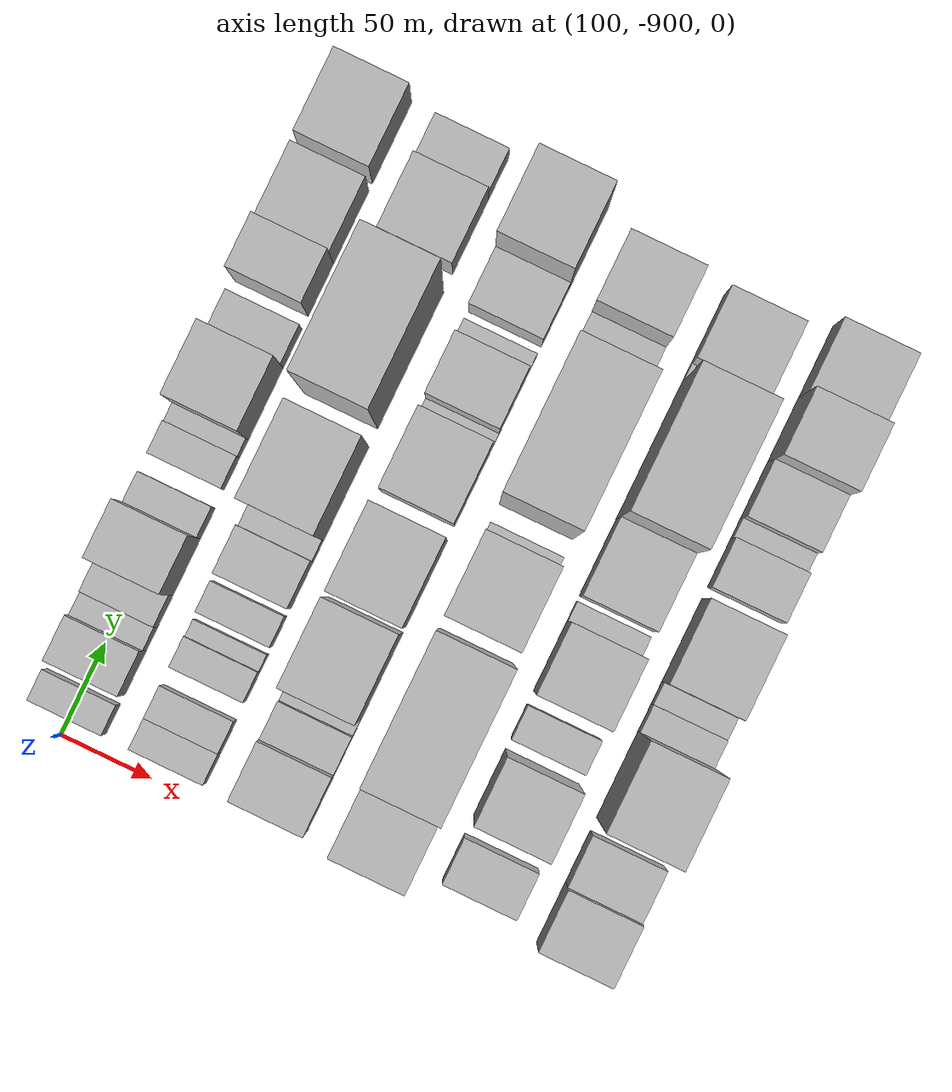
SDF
<sdf version="1.6">
 <world name="default">
  <model name="building_1">
   <static>1</static>
   <pose>100.0000 -881.7625 0 0.000000 0.000000 0.000000</pose>
   <link name="link">
    <pose>0 0 15.00 0 0 0</pose>
    <collision name="collision"><geometry><box><size>40.0000 16.4750 30.0000</size></box></geometry></collision>
    <visual name="visual">
     <cast_shadows>0</cast_shadows>
     <geometry><box><size>40.0000 16.4750 30.0000</size></box></geometry>
     <material>
      <script>
       <uri>model://HANNAS_wall/materials/scripts</uri>
       <uri>model://HANNAS_wall/materials/textures</uri>
       <name>vrc/HANNAS_wall</name>
      </script>
     </material>
    </visual>
   </link>
  </model>
  <model name="building_2">
   <static>1</static>
   <pose>100.0000 -856.3855 0 0.000000 0.000000 0.000000</pose>
   <link name="link">
    <pose>0 0 24.00 0 0 0</pose>
    <collision name="collision"><geometry><box><size>40.0000 24.2792 48.0000</size></box></geometry></collision>
    <visual name="visual">
     <cast_shadows>0</cast_shadows>
     <geometry><box><size>40.0000 24.2792 48.0000</size></box></geometry>
     <material>
      <script>
       <uri>model://HANNAS_wall/materials/scripts</uri>
       <uri>model://HANNAS_wall/materials/textures</uri>
       <name>vrc/HANNAS_wall</name>
      </script>
     </material>
    </visual>
   </link>
  </model>
  <model name="building_3">
   <static>1</static>
   <pose>100.0000 -837.9051 0 0.000000 0.000000 0.000000</pose>
   <link name="link">
    <pose>0 0 13.50 0 0 0</pose>
    <collision name="collision"><geometry><box><size>40.0000 12.6815 27.0000</size></box></geometry></collision>
    <visual name="visual">
     <cast_shadows>0</cast_shadows>
     <geometry><box><size>40.0000 12.6815 27.0000</size></box></geometry>
     <material>
      <script>
       <uri>model://HANNAS_wall/materials/scripts</uri>
       <uri>model://HANNAS_wall/materials/textures</uri>
       <name>vrc/HANNAS_wall</name>
      </script>
     </material>
    </visual>
   </link>
  </model>
  <model name="building_4">
   <static>1</static>
   <pose>100.0000 -822.8629 0 0.000000 0.000000 0.000000</pose>
   <link name="link">
    <pose>0 0 16.50 0 0 0</pose>
    <collision name="collision"><geometry><box><size>40.0000 17.4029 33.0000</size></box></geometry></collision>
    <visual name="visual">
     <cast_shadows>0</cast_shadows>
     <geometry><box><size>40.0000 17.4029 33.0000</size></box></geometry>
     <material>
      <script>
       <uri>model://HANNAS_wall/materials/scripts</uri>
       <uri>model://HANNAS_wall/materials/textures</uri>
       <name>vrc/HANNAS_wall</name>
      </script>
     </material>
    </visual>
   </link>
  </model>
  <model name="building_5">
   <static>1</static>
   <pose>100.0000 -798.7277 0 0.000000 0.000000 0.000000</pose>
   <link name="link">
    <pose>0 0 48.00 0 0 0</pose>
    <collision name="collision"><geometry><box><size>40.0000 30.8675 96.0000</size></box></geometry></collision>
    <visual name="visual">
     <cast_shadows>0</cast_shadows>
     <geometry><box><size>40.0000 30.8675 96.0000</size></box></geometry>
     <material>
      <script>
       <uri>model://HANNAS_wall/materials/scripts</uri>
       <uri>model://HANNAS_wall/materials/textures</uri>
       <name>vrc/HANNAS_wall</name>
      </script>
     </material>
    </visual>
   </link>
  </model>
  <model name="building_6">
   <static>1</static>
   <pose>100.0000 -774.9981 0 0.000000 0.000000 0.000000</pose>
   <link name="link">
    <pose>0 0 16.50 0 0 0</pose>
    <collision name="collision"><geometry><box><size>40.0000 16.5916 33.0000</size></box></geometry></collision>
    <visual name="visual">
     <cast_shadows>0</cast_shadows>
     <geometry><box><size>40.0000 16.5916 33.0000</size></box></geometry>
     <material>
      <script>
       <uri>model://HANNAS_wall/materials/scripts</uri>
       <uri>model://HANNAS_wall/materials/textures</uri>
       <name>vrc/HANNAS_wall</name>
      </script>
     </material>
    </visual>
   </link>
  </model>
  <model name="building_7">
   <static>1</static>
   <pose>100.0000 -747.9396 0 0.000000 0.000000 0.000000</pose>
   <link name="link">
    <pose>0 0 15.00 0 0 0</pose>
    <collision name="collision"><geometry><box><size>40.0000 17.5255 30.0000</size></box></geometry></collision>
    <visual name="visual">
     <cast_shadows>0</cast_shadows>
     <geometry><box><size>40.0000 17.5255 30.0000</size></box></geometry>
     <material>
      <script>
       <uri>model://HANNAS_wall/materials/scripts</uri>
       <uri>model://HANNAS_wall/materials/textures</uri>
       <name>vrc/HANNAS_wall</name>
      </script>
     </material>
    </visual>
   </link>
  </model>
  <model name="building_8">
   <static>1</static>
   <pose>100.0000 -734.2283 0 0.000000 0.000000 0.000000</pose>
   <link name="link">
    <pose>0 0 12.00 0 0 0</pose>
    <collision name="collision"><geometry><box><size>40.0000 9.8973 24.0000</size></box></geometry></collision>
    <visual name="visual">
     <cast_shadows>0</cast_shadows>
     <geometry><box><size>40.0000 9.8973 24.0000</size></box></geometry>
     <material>
      <script>
       <uri>model://HANNAS_wall/materials/scripts</uri>
       <uri>model://HANNAS_wall/materials/textures</uri>
       <name>vrc/HANNAS_wall</name>
      </script>
     </material>
    </visual>
   </link>
  </model>
  <model name="building_9">
   <static>1</static>
   <pose>100.0000 -709.6391 0 0.000000 0.000000 0.000000</pose>
   <link name="link">
    <pose>0 0 52.50 0 0 0</pose>
    <collision name="collision"><geometry><box><size>40.0000 39.2811 105.0000</size></box></geometry></collision>
    <visual name="visual">
     <cast_shadows>0</cast_shadows>
     <geometry><box><size>40.0000 39.2811 105.0000</size></box></geometry>
     <material>
      <script>
       <uri>model://HANNAS_wall/materials/scripts</uri>
       <uri>model://HANNAS_wall/materials/textures</uri>
       <name>vrc/HANNAS_wall</name>
      </script>
     </material>
    </visual>
   </link>
  </model>
  <model name="building_10">
   <static>1</static>
   <pose>100.0000 -679.3058 0 0.000000 0.000000 0.000000</pose>
   <link name="link">
    <pose>0 0 18.00 0 0 0</pose>
    <collision name="collision"><geometry><box><size>40.0000 21.3855 36.0000</size></box></geometry></collision>
    <visual name="visual">
     <cast_shadows>0</cast_shadows>
     <geometry><box><size>40.0000 21.3855 36.0000</size></box></geometry>
     <material>
      <script>
       <uri>model://HANNAS_wall/materials/scripts</uri>
       <uri>model://HANNAS_wall/materials/textures</uri>
       <name>vrc/HANNAS_wall</name>
      </script>
     </material>
    </visual>
   </link>
  </model>
  <model name="building_11">
   <static>1</static>
   <pose>100.0000 -647.3270 0 0.000000 0.000000 0.000000</pose>
   <link name="link">
    <pose>0 0 46.50 0 0 0</pose>
    <collision name="collision"><geometry><box><size>40.0000 28.5720 93.0000</size></box></geometry></collision>
    <visual name="visual">
     <cast_shadows>0</cast_shadows>
     <geometry><box><size>40.0000 28.5720 93.0000</size></box></geometry>
     <material>
      <script>
       <uri>model://HANNAS_wall/materials/scripts</uri>
       <uri>model://HANNAS_wall/materials/textures</uri>
       <name>vrc/HANNAS_wall</name>
      </script>
     </material>
    </visual>
   </link>
  </model>
  <model name="building_12">
   <static>1</static>
   <pose>100.0000 -612.9655 0 0.000000 0.000000 0.000000</pose>
   <link name="link">
    <pose>0 0 36.00 0 0 0</pose>
    <collision name="collision"><geometry><box><size>40.0000 40.1510 72.0000</size></box></geometry></collision>
    <visual name="visual">
     <cast_shadows>0</cast_shadows>
     <geometry><box><size>40.0000 40.1510 72.0000</size></box></geometry>
     <material>
      <script>
       <uri>model://HANNAS_wall/materials/scripts</uri>
       <uri>model://HANNAS_wall/materials/textures</uri>
       <name>vrc/HANNAS_wall</name>
      </script>
     </material>
    </visual>
   </link>
  </model>
  <model name="building_13">
   <static>1</static>
   <pose>100.0000 -566.7129 0 0.000000 0.000000 0.000000</pose>
   <link name="link">
    <pose>0 0 40.50 0 0 0</pose>
    <collision name="collision"><geometry><box><size>40.0000 44.3541 81.0000</size></box></geometry></collision>
    <visual name="visual">
     <cast_shadows>0</cast_shadows>
     <geometry><box><size>40.0000 44.3541 81.0000</size></box></geometry>
     <material>
      <script>
       <uri>model://HANNAS_wall/materials/scripts</uri>
       <uri>model://HANNAS_wall/materials/textures</uri>
       <name>vrc/HANNAS_wall</name>
      </script>
     </material>
    </visual>
   </link>
  </model>
  <model name="building_55">
   <static>1</static>
   <pose>155.0000 -881.6311 0 0.000000 0.000000 0.000000</pose>
   <link name="link">
    <pose>0 0 16.50 0 0 0</pose>
    <collision name="collision"><geometry><box><size>40.0000 16.7379 33.0000</size></box></geometry></collision>
    <visual name="visual">
     <cast_shadows>0</cast_shadows>
     <geometry><box><size>40.0000 16.7379 33.0000</size></box></geometry>
     <material>
      <script>
       <uri>model://HANNAS_wall/materials/scripts</uri>
       <uri>model://HANNAS_wall/materials/textures</uri>
       <name>vrc/HANNAS_wall</name>
      </script>
     </material>
    </visual>
   </link>
  </model>
  <model name="building_56">
   <static>1</static>
   <pose>155.0000 -864.4786 0 0.000000 0.000000 0.000000</pose>
   <link name="link">
    <pose>0 0 16.50 0 0 0</pose>
    <collision name="collision"><geometry><box><size>40.0000 17.5671 33.0000</size></box></geometry></collision>
    <visual name="visual">
     <cast_shadows>0</cast_shadows>
     <geometry><box><size>40.0000 17.5671 33.0000</size></box></geometry>
     <material>
      <script>
       <uri>model://HANNAS_wall/materials/scripts</uri>
       <uri>model://HANNAS_wall/materials/textures</uri>
       <name>vrc/HANNAS_wall</name>
      </script>
     </material>
    </visual>
   </link>
  </model>
  <model name="building_57">
   <static>1</static>
   <pose>155.0000 -837.4227 0 0.000000 0.000000 0.000000</pose>
   <link name="link">
    <pose>0 0 15.00 0 0 0</pose>
    <collision name="collision"><geometry><box><size>40.0000 16.5447 30.0000</size></box></geometry></collision>
    <visual name="visual">
     <cast_shadows>0</cast_shadows>
     <geometry><box><size>40.0000 16.5447 30.0000</size></box></geometry>
     <material>
      <script>
       <uri>model://HANNAS_wall/materials/scripts</uri>
       <uri>model://HANNAS_wall/materials/textures</uri>
       <name>vrc/HANNAS_wall</name>
      </script>
     </material>
    </visual>
   </link>
  </model>
  <model name="building_58">
   <static>1</static>
   <pose>155.0000 -824.5415 0 0.000000 0.000000 0.000000</pose>
   <link name="link">
    <pose>0 0 10.50 0 0 0</pose>
    <collision name="collision"><geometry><box><size>40.0000 9.2176 21.0000</size></box></geometry></collision>
    <visual name="visual">
     <cast_shadows>0</cast_shadows>
     <geometry><box><size>40.0000 9.2176 21.0000</size></box></geometry>
     <material>
      <script>
       <uri>model://HANNAS_wall/materials/scripts</uri>
       <uri>model://HANNAS_wall/materials/textures</uri>
       <name>vrc/HANNAS_wall</name>
      </script>
     </material>
    </visual>
   </link>
  </model>
  <model name="building_59">
   <static>1</static>
   <pose>155.0000 -807.5551 0 0.000000 0.000000 0.000000</pose>
   <link name="link">
    <pose>0 0 16.50 0 0 0</pose>
    <collision name="collision"><geometry><box><size>40.0000 16.7553 33.0000</size></box></geometry></collision>
    <visual name="visual">
     <cast_shadows>0</cast_shadows>
     <geometry><box><size>40.0000 16.7553 33.0000</size></box></geometry>
     <material>
      <script>
       <uri>model://HANNAS_wall/materials/scripts</uri>
       <uri>model://HANNAS_wall/materials/textures</uri>
       <name>vrc/HANNAS_wall</name>
      </script>
     </material>
    </visual>
   </link>
  </model>
  <model name="building_60">
   <static>1</static>
   <pose>155.0000 -782.2550 0 0.000000 0.000000 0.000000</pose>
   <link name="link">
    <pose>0 0 22.50 0 0 0</pose>
    <collision name="collision"><geometry><box><size>40.0000 25.8450 45.0000</size></box></geometry></collision>
    <visual name="visual">
     <cast_shadows>0</cast_shadows>
     <geometry><box><size>40.0000 25.8450 45.0000</size></box></geometry>
     <material>
      <script>
       <uri>model://HANNAS_wall/materials/scripts</uri>
       <uri>model://HANNAS_wall/materials/textures</uri>
       <name>vrc/HANNAS_wall</name>
      </script>
     </material>
    </visual>
   </link>
  </model>
  <model name="building_61">
   <static>1</static>
   <pose>155.0000 -763.6076 0 0.000000 0.000000 0.000000</pose>
   <link name="link">
    <pose>0 0 12.00 0 0 0</pose>
    <collision name="collision"><geometry><box><size>40.0000 11.4497 24.0000</size></box></geometry></collision>
    <visual name="visual">
     <cast_shadows>0</cast_shadows>
     <geometry><box><size>40.0000 11.4497 24.0000</size></box></geometry>
     <material>
      <script>
       <uri>model://HANNAS_wall/materials/scripts</uri>
       <uri>model://HANNAS_wall/materials/textures</uri>
       <name>vrc/HANNAS_wall</name>
      </script>
     </material>
    </visual>
   </link>
  </model>
  <model name="building_62">
   <static>1</static>
   <pose>155.0000 -732.2870 0 0.000000 0.000000 0.000000</pose>
   <link name="link">
    <pose>0 0 70.50 0 0 0</pose>
    <collision name="collision"><geometry><box><size>40.0000 51.1915 141.0000</size></box></geometry></collision>
    <visual name="visual">
     <cast_shadows>0</cast_shadows>
     <geometry><box><size>40.0000 51.1915 141.0000</size></box></geometry>
     <material>
      <script>
       <uri>model://HANNAS_wall/materials/scripts</uri>
       <uri>model://HANNAS_wall/materials/textures</uri>
       <name>vrc/HANNAS_wall</name>
      </script>
     </material>
    </visual>
   </link>
  </model>
  <model name="building_63">
   <static>1</static>
   <pose>155.0000 -659.3699 0 0.000000 0.000000 0.000000</pose>
   <link name="link">
    <pose>0 0 102.00 0 0 0</pose>
    <collision name="collision"><geometry><box><size>40.0000 74.6427 204.0000</size></box></geometry></collision>
    <visual name="visual">
     <cast_shadows>0</cast_shadows>
     <geometry><box><size>40.0000 74.6427 204.0000</size></box></geometry>
     <material>
      <script>
       <uri>model://HANNAS_wall/materials/scripts</uri>
       <uri>model://HANNAS_wall/materials/textures</uri>
       <name>vrc/HANNAS_wall</name>
      </script>
     </material>
    </visual>
   </link>
  </model>
  <model name="building_64">
   <static>1</static>
   <pose>155.0000 -591.8544 0 0.000000 0.000000 0.000000</pose>
   <link name="link">
    <pose>0 0 34.50 0 0 0</pose>
    <collision name="collision"><geometry><box><size>40.0000 40.3883 69.0000</size></box></geometry></collision>
    <visual name="visual">
     <cast_shadows>0</cast_shadows>
     <geometry><box><size>40.0000 40.3883 69.0000</size></box></geometry>
     <material>
      <script>
       <uri>model://HANNAS_wall/materials/scripts</uri>
       <uri>model://HANNAS_wall/materials/textures</uri>
       <name>vrc/HANNAS_wall</name>
      </script>
     </material>
    </visual>
   </link>
  </model>
  <model name="building_65">
   <static>1</static>
   <pose>155.0000 -559.8969 0 0.000000 0.000000 0.000000</pose>
   <link name="link">
    <pose>0 0 22.50 0 0 0</pose>
    <collision name="collision"><geometry><box><size>40.0000 23.5267 45.0000</size></box></geometry></collision>
    <visual name="visual">
     <cast_shadows>0</cast_shadows>
     <geometry><box><size>40.0000 23.5267 45.0000</size></box></geometry>
     <material>
      <script>
       <uri>model://HANNAS_wall/materials/scripts</uri>
       <uri>model://HANNAS_wall/materials/textures</uri>
       <name>vrc/HANNAS_wall</name>
      </script>
     </material>
    </visual>
   </link>
  </model>
  <model name="building_104">
   <static>1</static>
   <pose>210.0000 -874.0000 0 0.000000 0.000000 0.000000</pose>
   <link name="link">
    <pose>0 0 30.00 0 0 0</pose>
    <collision name="collision"><geometry><box><size>40.0000 32.0001 60.0000</size></box></geometry></collision>
    <visual name="visual">
     <cast_shadows>0</cast_shadows>
     <geometry><box><size>40.0000 32.0001 60.0000</size></box></geometry>
     <material>
      <script>
       <uri>model://HANNAS_wall/materials/scripts</uri>
       <uri>model://HANNAS_wall/materials/textures</uri>
       <name>vrc/HANNAS_wall</name>
      </script>
     </material>
    </visual>
   </link>
  </model>
  <model name="building_105">
   <static>1</static>
   <pose>210.0000 -847.6858 0 0.000000 0.000000 0.000000</pose>
   <link name="link">
    <pose>0 0 18.00 0 0 0</pose>
    <collision name="collision"><geometry><box><size>40.0000 20.6282 36.0000</size></box></geometry></collision>
    <visual name="visual">
     <cast_shadows>0</cast_shadows>
     <geometry><box><size>40.0000 20.6282 36.0000</size></box></geometry>
     <material>
      <script>
       <uri>model://HANNAS_wall/materials/scripts</uri>
       <uri>model://HANNAS_wall/materials/textures</uri>
       <name>vrc/HANNAS_wall</name>
      </script>
     </material>
    </visual>
   </link>
  </model>
  <model name="building_106">
   <static>1</static>
   <pose>210.0000 -832.7946 0 0.000000 0.000000 0.000000</pose>
   <link name="link">
    <pose>0 0 10.50 0 0 0</pose>
    <collision name="collision"><geometry><box><size>40.0000 9.1542 21.0000</size></box></geometry></collision>
    <visual name="visual">
     <cast_shadows>0</cast_shadows>
     <geometry><box><size>40.0000 9.1542 21.0000</size></box></geometry>
     <material>
      <script>
       <uri>model://HANNAS_wall/materials/scripts</uri>
       <uri>model://HANNAS_wall/materials/textures</uri>
       <name>vrc/HANNAS_wall</name>
      </script>
     </material>
    </visual>
   </link>
  </model>
  <model name="building_107">
   <static>1</static>
   <pose>210.0000 -804.8758 0 0.000000 0.000000 0.000000</pose>
   <link name="link">
    <pose>0 0 67.50 0 0 0</pose>
    <collision name="collision"><geometry><box><size>40.0000 46.6835 135.0000</size></box></geometry></collision>
    <visual name="visual">
     <cast_shadows>0</cast_shadows>
     <geometry><box><size>40.0000 46.6835 135.0000</size></box></geometry>
     <material>
      <script>
       <uri>model://HANNAS_wall/materials/scripts</uri>
       <uri>model://HANNAS_wall/materials/textures</uri>
       <name>vrc/HANNAS_wall</name>
      </script>
     </material>
    </visual>
   </link>
  </model>
  <model name="building_108">
   <static>1</static>
   <pose>210.0000 -755.1215 0 0.000000 0.000000 0.000000</pose>
   <link name="link">
    <pose>0 0 61.50 0 0 0</pose>
    <collision name="collision"><geometry><box><size>40.0000 46.8251 123.0000</size></box></geometry></collision>
    <visual name="visual">
     <cast_shadows>0</cast_shadows>
     <geometry><box><size>40.0000 46.8251 123.0000</size></box></geometry>
     <material>
      <script>
       <uri>model://HANNAS_wall/materials/scripts</uri>
       <uri>model://HANNAS_wall/materials/textures</uri>
       <name>vrc/HANNAS_wall</name>
      </script>
     </material>
    </visual>
   </link>
  </model>
  <model name="building_109">
   <static>1</static>
   <pose>210.0000 -701.8654 0 0.000000 0.000000 0.000000</pose>
   <link name="link">
    <pose>0 0 37.50 0 0 0</pose>
    <collision name="collision"><geometry><box><size>40.0000 43.6871 75.0000</size></box></geometry></collision>
    <visual name="visual">
     <cast_shadows>0</cast_shadows>
     <geometry><box><size>40.0000 43.6871 75.0000</size></box></geometry>
     <material>
      <script>
       <uri>model://HANNAS_wall/materials/scripts</uri>
       <uri>model://HANNAS_wall/materials/textures</uri>
       <name>vrc/HANNAS_wall</name>
      </script>
     </material>
    </visual>
   </link>
  </model>
  <model name="building_110">
   <static>1</static>
   <pose>210.0000 -676.6500 0 0.000000 0.000000 0.000000</pose>
   <link name="link">
    <pose>0 0 7.50 0 0 0</pose>
    <collision name="collision"><geometry><box><size>40.0000 6.7435 15.0000</size></box></geometry></collision>
    <visual name="visual">
     <cast_shadows>0</cast_shadows>
     <geometry><box><size>40.0000 6.7435 15.0000</size></box></geometry>
     <material>
      <script>
       <uri>model://HANNAS_wall/materials/scripts</uri>
       <uri>model://HANNAS_wall/materials/textures</uri>
       <name>vrc/HANNAS_wall</name>
      </script>
     </material>
    </visual>
   </link>
  </model>
  <model name="building_111">
   <static>1</static>
   <pose>210.0000 -656.5420 0 0.000000 0.000000 0.000000</pose>
   <link name="link">
    <pose>0 0 33.00 0 0 0</pose>
    <collision name="collision"><geometry><box><size>40.0000 33.4725 66.0000</size></box></geometry></collision>
    <visual name="visual">
     <cast_shadows>0</cast_shadows>
     <geometry><box><size>40.0000 33.4725 66.0000</size></box></geometry>
     <material>
      <script>
       <uri>model://HANNAS_wall/materials/scripts</uri>
       <uri>model://HANNAS_wall/materials/textures</uri>
       <name>vrc/HANNAS_wall</name>
      </script>
     </material>
    </visual>
   </link>
  </model>
  <model name="building_112">
   <static>1</static>
   <pose>210.0000 -635.0060 0 0.000000 0.000000 0.000000</pose>
   <link name="link">
    <pose>0 0 10.50 0 0 0</pose>
    <collision name="collision"><geometry><box><size>40.0000 9.5997 21.0000</size></box></geometry></collision>
    <visual name="visual">
     <cast_shadows>0</cast_shadows>
     <geometry><box><size>40.0000 9.5997 21.0000</size></box></geometry>
     <material>
      <script>
       <uri>model://HANNAS_wall/materials/scripts</uri>
       <uri>model://HANNAS_wall/materials/textures</uri>
       <name>vrc/HANNAS_wall</name>
      </script>
     </material>
    </visual>
   </link>
  </model>
  <model name="building_113">
   <static>1</static>
   <pose>210.0000 -610.1034 0 0.000000 0.000000 0.000000</pose>
   <link name="link">
    <pose>0 0 30.00 0 0 0</pose>
    <collision name="collision"><geometry><box><size>40.0000 30.2054 60.0000</size></box></geometry></collision>
    <visual name="visual">
     <cast_shadows>0</cast_shadows>
     <geometry><box><size>40.0000 30.2054 60.0000</size></box></geometry>
     <material>
      <script>
       <uri>model://HANNAS_wall/materials/scripts</uri>
       <uri>model://HANNAS_wall/materials/textures</uri>
       <name>vrc/HANNAS_wall</name>
      </script>
     </material>
    </visual>
   </link>
  </model>
  <model name="building_114">
   <static>1</static>
   <pose>210.0000 -572.5252 0 0.000000 0.000000 0.000000</pose>
   <link name="link">
    <pose>0 0 70.50 0 0 0</pose>
    <collision name="collision"><geometry><box><size>40.0000 44.9510 141.0000</size></box></geometry></collision>
    <visual name="visual">
     <cast_shadows>0</cast_shadows>
     <geometry><box><size>40.0000 44.9510 141.0000</size></box></geometry>
     <material>
      <script>
       <uri>model://HANNAS_wall/materials/scripts</uri>
       <uri>model://HANNAS_wall/materials/textures</uri>
       <name>vrc/HANNAS_wall</name>
      </script>
     </material>
    </visual>
   </link>
  </model>
  <model name="building_157">
   <static>1</static>
   <pose>265.0000 -869.7420 0 0.000000 0.000000 0.000000</pose>
   <link name="link">
    <pose>0 0 57.00 0 0 0</pose>
    <collision name="collision"><geometry><box><size>40.0000 40.5159 114.0000</size></box></geometry></collision>
    <visual name="visual">
     <cast_shadows>0</cast_shadows>
     <geometry><box><size>40.0000 40.5159 114.0000</size></box></geometry>
     <material>
      <script>
       <uri>model://HANNAS_wall/materials/scripts</uri>
       <uri>model://HANNAS_wall/materials/textures</uri>
       <name>vrc/HANNAS_wall</name>
      </script>
     </material>
    </visual>
   </link>
  </model>
  <model name="building_158">
   <static>1</static>
   <pose>265.0000 -810.5666 0 0.000000 0.000000 0.000000</pose>
   <link name="link">
    <pose>0 0 105.00 0 0 0</pose>
    <collision name="collision"><geometry><box><size>40.0000 77.8350 210.0000</size></box></geometry></collision>
    <visual name="visual">
     <cast_shadows>0</cast_shadows>
     <geometry><box><size>40.0000 77.8350 210.0000</size></box></geometry>
     <material>
      <script>
       <uri>model://HANNAS_wall/materials/scripts</uri>
       <uri>model://HANNAS_wall/materials/textures</uri>
       <name>vrc/HANNAS_wall</name>
      </script>
     </material>
    </visual>
   </link>
  </model>
  <model name="building_159">
   <static>1</static>
   <pose>265.0000 -742.4040 0 0.000000 0.000000 0.000000</pose>
   <link name="link">
    <pose>0 0 61.50 0 0 0</pose>
    <collision name="collision"><geometry><box><size>40.0000 44.4901 123.0000</size></box></geometry></collision>
    <visual name="visual">
     <cast_shadows>0</cast_shadows>
     <geometry><box><size>40.0000 44.4901 123.0000</size></box></geometry>
     <material>
      <script>
       <uri>model://HANNAS_wall/materials/scripts</uri>
       <uri>model://HANNAS_wall/materials/textures</uri>
       <name>vrc/HANNAS_wall</name>
      </script>
     </material>
    </visual>
   </link>
  </model>
  <model name="building_160">
   <static>1</static>
   <pose>265.0000 -717.0998 0 0.000000 0.000000 0.000000</pose>
   <link name="link">
    <pose>0 0 7.50 0 0 0</pose>
    <collision name="collision"><geometry><box><size>40.0000 6.1184 15.0000</size></box></geometry></collision>
    <visual name="visual">
     <cast_shadows>0</cast_shadows>
     <geometry><box><size>40.0000 6.1184 15.0000</size></box></geometry>
     <material>
      <script>
       <uri>model://HANNAS_wall/materials/scripts</uri>
       <uri>model://HANNAS_wall/materials/textures</uri>
       <name>vrc/HANNAS_wall</name>
      </script>
     </material>
    </visual>
   </link>
  </model>
  <model name="building_161">
   <static>1</static>
   <pose>265.0000 -664.5397 0 0.000000 0.000000 0.000000</pose>
   <link name="link">
    <pose>0 0 111.00 0 0 0</pose>
    <collision name="collision"><geometry><box><size>40.0000 79.0017 222.0000</size></box></geometry></collision>
    <visual name="visual">
     <cast_shadows>0</cast_shadows>
     <geometry><box><size>40.0000 79.0017 222.0000</size></box></geometry>
     <material>
      <script>
       <uri>model://HANNAS_wall/materials/scripts</uri>
       <uri>model://HANNAS_wall/materials/textures</uri>
       <name>vrc/HANNAS_wall</name>
      </script>
     </material>
    </visual>
   </link>
  </model>
  <model name="building_162">
   <static>1</static>
   <pose>265.0000 -608.4240 0 0.000000 0.000000 0.000000</pose>
   <link name="link">
    <pose>0 0 15.00 0 0 0</pose>
    <collision name="collision"><geometry><box><size>40.0000 15.2297 30.0000</size></box></geometry></collision>
    <visual name="visual">
     <cast_shadows>0</cast_shadows>
     <geometry><box><size>40.0000 15.2297 30.0000</size></box></geometry>
     <material>
      <script>
       <uri>model://HANNAS_wall/materials/scripts</uri>
       <uri>model://HANNAS_wall/materials/textures</uri>
       <name>vrc/HANNAS_wall</name>
      </script>
     </material>
    </visual>
   </link>
  </model>
  <model name="building_163">
   <static>1</static>
   <pose>265.0000 -582.1180 0 0.000000 0.000000 0.000000</pose>
   <link name="link">
    <pose>0 0 52.50 0 0 0</pose>
    <collision name="collision"><geometry><box><size>40.0000 37.3822 105.0000</size></box></geometry></collision>
    <visual name="visual">
     <cast_shadows>0</cast_shadows>
     <geometry><box><size>40.0000 37.3822 105.0000</size></box></geometry>
     <material>
      <script>
       <uri>model://HANNAS_wall/materials/scripts</uri>
       <uri>model://HANNAS_wall/materials/textures</uri>
       <name>vrc/HANNAS_wall</name>
      </script>
     </material>
    </visual>
   </link>
  </model>
  <model name="building_205">
   <static>1</static>
   <pose>320.0000 -869.4951 0 0.000000 0.000000 0.000000</pose>
   <link name="link">
    <pose>0 0 22.50 0 0 0</pose>
    <collision name="collision"><geometry><box><size>40.0000 25.0098 45.0000</size></box></geometry></collision>
    <visual name="visual">
     <cast_shadows>0</cast_shadows>
     <geometry><box><size>40.0000 25.0098 45.0000</size></box></geometry>
     <material>
      <script>
       <uri>model://HANNAS_wall/materials/scripts</uri>
       <uri>model://HANNAS_wall/materials/textures</uri>
       <name>vrc/HANNAS_wall</name>
      </script>
     </material>
    </visual>
   </link>
  </model>
  <model name="building_206">
   <static>1</static>
   <pose>320.0000 -828.9703 0 0.000000 0.000000 0.000000</pose>
   <link name="link">
    <pose>0 0 58.50 0 0 0</pose>
    <collision name="collision"><geometry><box><size>40.0000 36.0398 117.0000</size></box></geometry></collision>
    <visual name="visual">
     <cast_shadows>0</cast_shadows>
     <geometry><box><size>40.0000 36.0398 117.0000</size></box></geometry>
     <material>
      <script>
       <uri>model://HANNAS_wall/materials/scripts</uri>
       <uri>model://HANNAS_wall/materials/textures</uri>
       <name>vrc/HANNAS_wall</name>
      </script>
     </material>
    </visual>
   </link>
  </model>
  <model name="building_207">
   <static>1</static>
   <pose>320.0000 -795.6777 0 0.000000 0.000000 0.000000</pose>
   <link name="link">
    <pose>0 0 18.00 0 0 0</pose>
    <collision name="collision"><geometry><box><size>40.0000 18.5454 36.0000</size></box></geometry></collision>
    <visual name="visual">
     <cast_shadows>0</cast_shadows>
     <geometry><box><size>40.0000 18.5454 36.0000</size></box></geometry>
     <material>
      <script>
       <uri>model://HANNAS_wall/materials/scripts</uri>
       <uri>model://HANNAS_wall/materials/textures</uri>
       <name>vrc/HANNAS_wall</name>
      </script>
     </material>
    </visual>
   </link>
  </model>
  <model name="building_208">
   <static>1</static>
   <pose>320.0000 -760.4525 0 0.000000 0.000000 0.000000</pose>
   <link name="link">
    <pose>0 0 51.00 0 0 0</pose>
    <collision name="collision"><geometry><box><size>40.0000 37.9051 102.0000</size></box></geometry></collision>
    <visual name="visual">
     <cast_shadows>0</cast_shadows>
     <geometry><box><size>40.0000 37.9051 102.0000</size></box></geometry>
     <material>
      <script>
       <uri>model://HANNAS_wall/materials/scripts</uri>
       <uri>model://HANNAS_wall/materials/textures</uri>
       <name>vrc/HANNAS_wall</name>
      </script>
     </material>
    </visual>
   </link>
  </model>
  <model name="building_209">
   <static>1</static>
   <pose>320.0000 -736.0866 0 0.000000 0.000000 0.000000</pose>
   <link name="link">
    <pose>0 0 12.00 0 0 0</pose>
    <collision name="collision"><geometry><box><size>40.0000 10.8265 24.0000</size></box></geometry></collision>
    <visual name="visual">
     <cast_shadows>0</cast_shadows>
     <geometry><box><size>40.0000 10.8265 24.0000</size></box></geometry>
     <material>
      <script>
       <uri>model://HANNAS_wall/materials/scripts</uri>
       <uri>model://HANNAS_wall/materials/textures</uri>
       <name>vrc/HANNAS_wall</name>
      </script>
     </material>
    </visual>
   </link>
  </model>
  <model name="building_210">
   <static>1</static>
   <pose>320.0000 -706.8451 0 0.000000 0.000000 0.000000</pose>
   <link name="link">
    <pose>0 0 37.50 0 0 0</pose>
    <collision name="collision"><geometry><box><size>40.0000 41.6565 75.0000</size></box></geometry></collision>
    <visual name="visual">
     <cast_shadows>0</cast_shadows>
     <geometry><box><size>40.0000 41.6565 75.0000</size></box></geometry>
     <material>
      <script>
       <uri>model://HANNAS_wall/materials/scripts</uri>
       <uri>model://HANNAS_wall/materials/textures</uri>
       <name>vrc/HANNAS_wall</name>
      </script>
     </material>
    </visual>
   </link>
  </model>
  <model name="building_211">
   <static>1</static>
   <pose>320.0000 -648.5300 0 0.000000 0.000000 0.000000</pose>
   <link name="link">
    <pose>0 0 94.50 0 0 0</pose>
    <collision name="collision"><geometry><box><size>40.0000 74.9738 189.0000</size></box></geometry></collision>
    <visual name="visual">
     <cast_shadows>0</cast_shadows>
     <geometry><box><size>40.0000 74.9738 189.0000</size></box></geometry>
     <material>
      <script>
       <uri>model://HANNAS_wall/materials/scripts</uri>
       <uri>model://HANNAS_wall/materials/textures</uri>
       <name>vrc/HANNAS_wall</name>
      </script>
     </material>
    </visual>
   </link>
  </model>
  <model name="building_212">
   <static>1</static>
   <pose>320.0000 -606.3696 0 0.000000 0.000000 0.000000</pose>
   <link name="link">
    <pose>0 0 10.50 0 0 0</pose>
    <collision name="collision"><geometry><box><size>40.0000 9.3471 21.0000</size></box></geometry></collision>
    <visual name="visual">
     <cast_shadows>0</cast_shadows>
     <geometry><box><size>40.0000 9.3471 21.0000</size></box></geometry>
     <material>
      <script>
       <uri>model://HANNAS_wall/materials/scripts</uri>
       <uri>model://HANNAS_wall/materials/textures</uri>
       <name>vrc/HANNAS_wall</name>
      </script>
     </material>
    </visual>
   </link>
  </model>
  <model name="building_213">
   <static>1</static>
   <pose>320.0000 -582.3922 0 0.000000 0.000000 0.000000</pose>
   <link name="link">
    <pose>0 0 34.50 0 0 0</pose>
    <collision name="collision"><geometry><box><size>40.0000 38.6075 69.0000</size></box></geometry></collision>
    <visual name="visual">
     <cast_shadows>0</cast_shadows>
     <geometry><box><size>40.0000 38.6075 69.0000</size></box></geometry>
     <material>
      <script>
       <uri>model://HANNAS_wall/materials/scripts</uri>
       <uri>model://HANNAS_wall/materials/textures</uri>
       <name>vrc/HANNAS_wall</name>
      </script>
     </material>
    </visual>
   </link>
  </model>
  <model name="building_258">
   <static>1</static>
   <pose>375.0000 -873.4776 0 0.000000 0.000000 0.000000</pose>
   <link name="link">
    <pose>0 0 31.50 0 0 0</pose>
    <collision name="collision"><geometry><box><size>40.0000 33.0448 63.0000</size></box></geometry></collision>
    <visual name="visual">
     <cast_shadows>0</cast_shadows>
     <geometry><box><size>40.0000 33.0448 63.0000</size></box></geometry>
     <material>
      <script>
       <uri>model://HANNAS_wall/materials/scripts</uri>
       <uri>model://HANNAS_wall/materials/textures</uri>
       <name>vrc/HANNAS_wall</name>
      </script>
     </material>
    </visual>
   </link>
  </model>
  <model name="building_259">
   <static>1</static>
   <pose>375.0000 -842.9707 0 0.000000 0.000000 0.000000</pose>
   <link name="link">
    <pose>0 0 24.00 0 0 0</pose>
    <collision name="collision"><geometry><box><size>40.0000 27.9690 48.0000</size></box></geometry></collision>
    <visual name="visual">
     <cast_shadows>0</cast_shadows>
     <geometry><box><size>40.0000 27.9690 48.0000</size></box></geometry>
     <material>
      <script>
       <uri>model://HANNAS_wall/materials/scripts</uri>
       <uri>model://HANNAS_wall/materials/textures</uri>
       <name>vrc/HANNAS_wall</name>
      </script>
     </material>
    </visual>
   </link>
  </model>
  <model name="building_260">
   <static>1</static>
   <pose>375.0000 -798.4233 0 0.000000 0.000000 0.000000</pose>
   <link name="link">
    <pose>0 0 75.00 0 0 0</pose>
    <collision name="collision"><geometry><box><size>40.0000 47.1257 150.0000</size></box></geometry></collision>
    <visual name="visual">
     <cast_shadows>0</cast_shadows>
     <geometry><box><size>40.0000 47.1257 150.0000</size></box></geometry>
     <material>
      <script>
       <uri>model://HANNAS_wall/materials/scripts</uri>
       <uri>model://HANNAS_wall/materials/textures</uri>
       <name>vrc/HANNAS_wall</name>
      </script>
     </material>
    </visual>
   </link>
  </model>
  <model name="building_261">
   <static>1</static>
   <pose>375.0000 -767.3290 0 0.000000 0.000000 0.000000</pose>
   <link name="link">
    <pose>0 0 15.00 0 0 0</pose>
    <collision name="collision"><geometry><box><size>40.0000 15.0630 30.0000</size></box></geometry></collision>
    <visual name="visual">
     <cast_shadows>0</cast_shadows>
     <geometry><box><size>40.0000 15.0630 30.0000</size></box></geometry>
     <material>
      <script>
       <uri>model://HANNAS_wall/materials/scripts</uri>
       <uri>model://HANNAS_wall/materials/textures</uri>
       <name>vrc/HANNAS_wall</name>
      </script>
     </material>
    </visual>
   </link>
  </model>
  <model name="building_262">
   <static>1</static>
   <pose>375.0000 -753.7820 0 0.000000 0.000000 0.000000</pose>
   <link name="link">
    <pose>0 0 13.50 0 0 0</pose>
    <collision name="collision"><geometry><box><size>40.0000 12.0309 27.0000</size></box></geometry></collision>
    <visual name="visual">
     <cast_shadows>0</cast_shadows>
     <geometry><box><size>40.0000 12.0309 27.0000</size></box></geometry>
     <material>
      <script>
       <uri>model://HANNAS_wall/materials/scripts</uri>
       <uri>model://HANNAS_wall/materials/textures</uri>
       <name>vrc/HANNAS_wall</name>
      </script>
     </material>
    </visual>
   </link>
  </model>
  <model name="building_263">
   <static>1</static>
   <pose>375.0000 -725.1289 0 0.000000 0.000000 0.000000</pose>
   <link name="link">
    <pose>0 0 40.50 0 0 0</pose>
    <collision name="collision"><geometry><box><size>40.0000 45.2753 81.0000</size></box></geometry></collision>
    <visual name="visual">
     <cast_shadows>0</cast_shadows>
     <geometry><box><size>40.0000 45.2753 81.0000</size></box></geometry>
     <material>
      <script>
       <uri>model://HANNAS_wall/materials/scripts</uri>
       <uri>model://HANNAS_wall/materials/textures</uri>
       <name>vrc/HANNAS_wall</name>
      </script>
     </material>
    </visual>
   </link>
  </model>
  <model name="building_264">
   <static>1</static>
   <pose>375.0000 -683.1226 0 0.000000 0.000000 0.000000</pose>
   <link name="link">
    <pose>0 0 22.50 0 0 0</pose>
    <collision name="collision"><geometry><box><size>40.0000 26.7372 45.0000</size></box></geometry></collision>
    <visual name="visual">
     <cast_shadows>0</cast_shadows>
     <geometry><box><size>40.0000 26.7372 45.0000</size></box></geometry>
     <material>
      <script>
       <uri>model://HANNAS_wall/materials/scripts</uri>
       <uri>model://HANNAS_wall/materials/textures</uri>
       <name>vrc/HANNAS_wall</name>
      </script>
     </material>
    </visual>
   </link>
  </model>
  <model name="building_265">
   <static>1</static>
   <pose>375.0000 -664.2901 0 0.000000 0.000000 0.000000</pose>
   <link name="link">
    <pose>0 0 12.00 0 0 0</pose>
    <collision name="collision"><geometry><box><size>40.0000 10.9280 24.0000</size></box></geometry></collision>
    <visual name="visual">
     <cast_shadows>0</cast_shadows>
     <geometry><box><size>40.0000 10.9280 24.0000</size></box></geometry>
     <material>
      <script>
       <uri>model://HANNAS_wall/materials/scripts</uri>
       <uri>model://HANNAS_wall/materials/textures</uri>
       <name>vrc/HANNAS_wall</name>
      </script>
     </material>
    </visual>
   </link>
  </model>
  <model name="building_266">
   <static>1</static>
   <pose>375.0000 -643.4744 0 0.000000 0.000000 0.000000</pose>
   <link name="link">
    <pose>0 0 27.00 0 0 0</pose>
    <collision name="collision"><geometry><box><size>40.0000 30.7034 54.0000</size></box></geometry></collision>
    <visual name="visual">
     <cast_shadows>0</cast_shadows>
     <geometry><box><size>40.0000 30.7034 54.0000</size></box></geometry>
     <material>
      <script>
       <uri>model://HANNAS_wall/materials/scripts</uri>
       <uri>model://HANNAS_wall/materials/textures</uri>
       <name>vrc/HANNAS_wall</name>
      </script>
     </material>
    </visual>
   </link>
  </model>
  <model name="building_267">
   <static>1</static>
   <pose>375.0000 -610.3960 0 0.000000 0.000000 0.000000</pose>
   <link name="link">
    <pose>0 0 55.50 0 0 0</pose>
    <collision name="collision"><geometry><box><size>40.0000 35.4533 111.0000</size></box></geometry></collision>
    <visual name="visual">
     <cast_shadows>0</cast_shadows>
     <geometry><box><size>40.0000 35.4533 111.0000</size></box></geometry>
     <material>
      <script>
       <uri>model://HANNAS_wall/materials/scripts</uri>
       <uri>model://HANNAS_wall/materials/textures</uri>
       <name>vrc/HANNAS_wall</name>
      </script>
     </material>
    </visual>
   </link>
  </model>
  <model name="building_268">
   <static>1</static>
   <pose>375.0000 -573.1101 0 0.000000 0.000000 0.000000</pose>
   <link name="link">
    <pose>0 0 34.50 0 0 0</pose>
    <collision name="collision"><geometry><box><size>40.0000 39.1185 69.0000</size></box></geometry></collision>
    <visual name="visual">
     <cast_shadows>0</cast_shadows>
     <geometry><box><size>40.0000 39.1185 69.0000</size></box></geometry>
     <material>
      <script>
       <uri>model://HANNAS_wall/materials/scripts</uri>
       <uri>model://HANNAS_wall/materials/textures</uri>
       <name>vrc/HANNAS_wall</name>
      </script>
     </material>
    </visual>
   </link>
  </model>
 </world>
</sdf>
